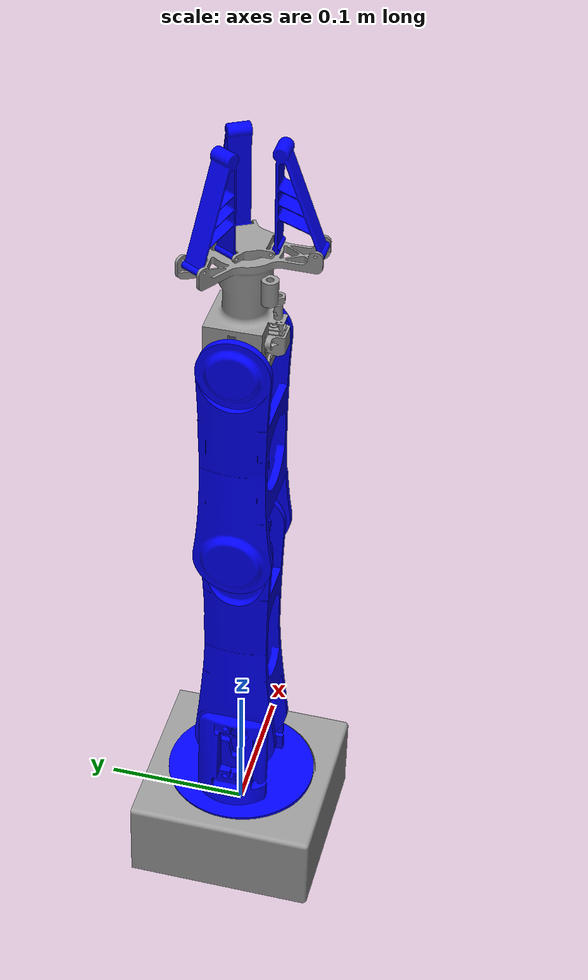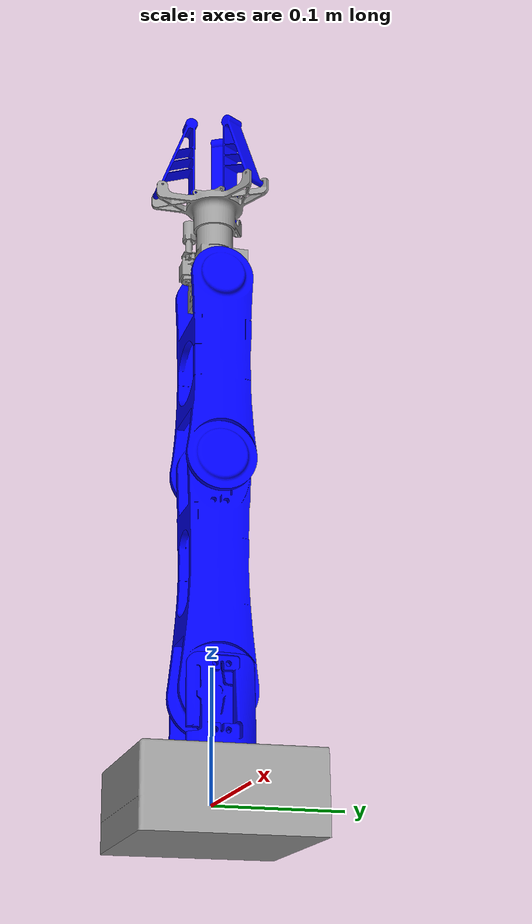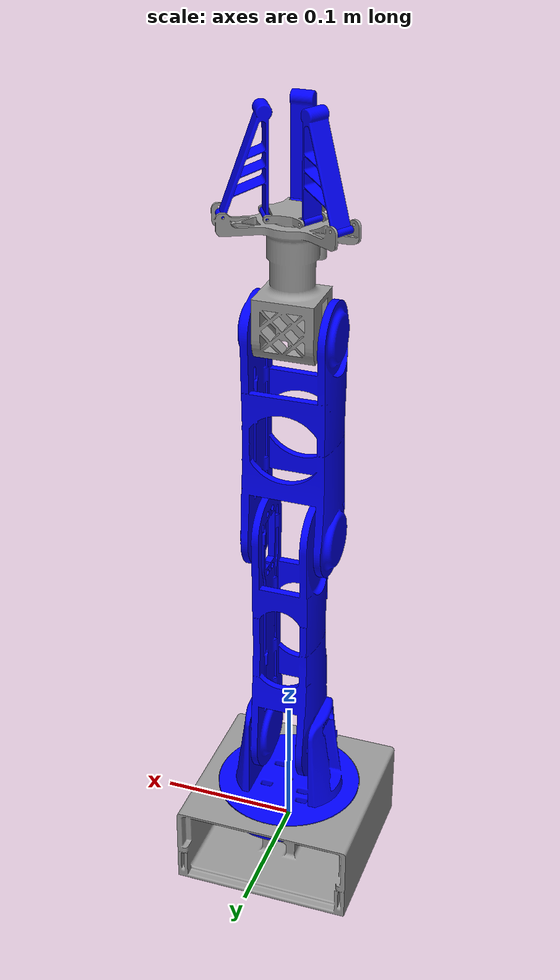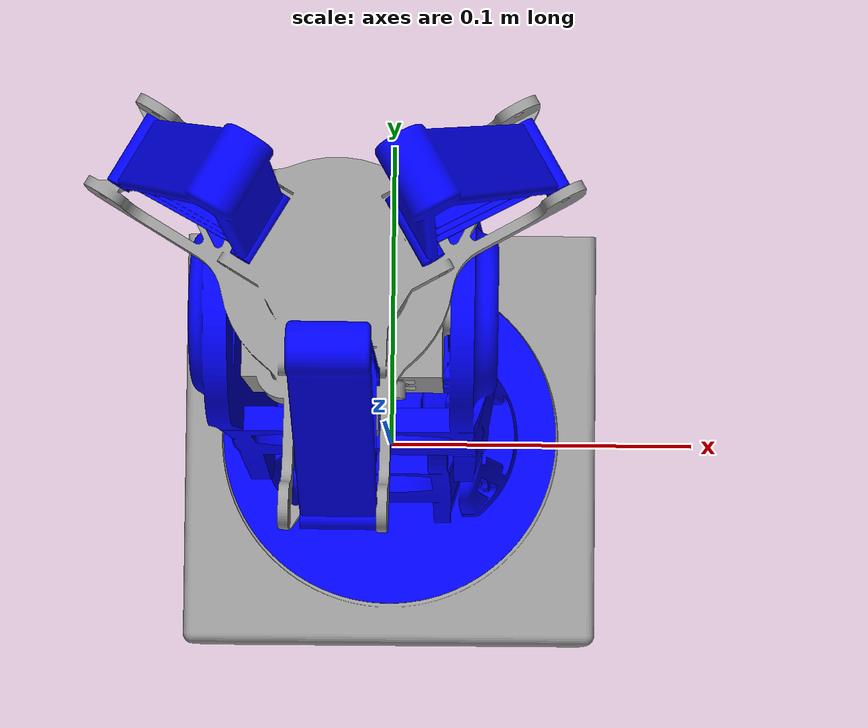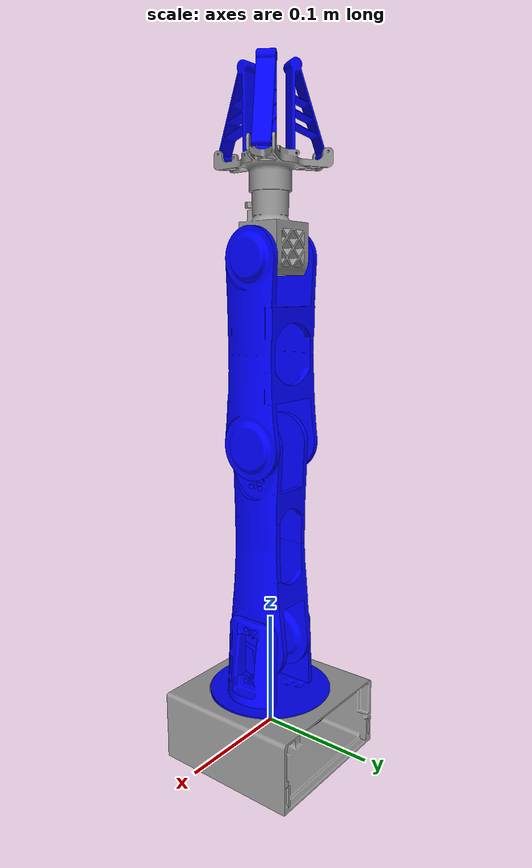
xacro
<?xml version="1.0"?>
<robot xmlns:xacro="http://www.ros.org/wiki/xacro" name="arm">

<!-- Base Link -->
  <link name="base_link">
    <inertial>
      <mass value="5.0"/>
      <origin xyz="0 0 0" rpy="0 0 0"/>
      <inertia ixx="0.1" ixy="0.0" ixz="0.0" iyy="0.1" iyz="0.0" izz="0.1"/>
    </inertial>
    <visual>
      <geometry>
        <mesh filename="$(find agrirover_description)/meshes/Base.stl" scale="0.001 0.001 0.001"/>
      </geometry>
      <material name="gray">
        <color rgba="0.6 0.6 0.6 1"/>
      </material>
    </visual>
    <collision>
      <geometry>
        <mesh filename="$(find agrirover_description)/meshes/Base_simplified.stl" scale="0.001 0.001 0.001"/>
      </geometry>
      <origin xyz="0 0 0" rpy="0 0 0"/>
    </collision>
  </link>

<!-- Arm Link 0 -->
  <link name="arm_link_0">
    <inertial>
      <mass value="3.0"/>
      <origin xyz="0 0 0" rpy="0 0 0"/>
      <inertia ixx="0.05" ixy="0.0" ixz="0.0" iyy="0.05" iyz="0.0" izz="0.05"/>
    </inertial>
    <visual>
      <geometry>
        <mesh filename="$(find agrirover_description)/meshes/Link_0.stl" scale="0.001 0.001 0.001"/>
      </geometry>
      <material name="blue">
        <color rgba="0 0 1 1"/>
      </material>
    </visual>
    <collision>
      <geometry>
        <mesh filename="$(find agrirover_description)/meshes/Link_0_simplified.stl" scale="0.001 0.001 0.001"/>
      </geometry>
      <origin xyz="0 0 0" rpy="0 0 0"/>
    </collision>
  </link>

<!-- Arm Link 1 -->
  <link name="arm_link_1">
    <inertial>
      <mass value="2.0"/>
      <origin xyz="0 0 0" rpy="0 0 0"/>
      <inertia ixx="0.03" ixy="0.0" ixz="0.0" iyy="0.03" iyz="0.0" izz="0.03"/>
    </inertial>
    <visual>
      <geometry>
        <mesh filename="$(find agrirover_description)/meshes/Link_1.stl" scale="0.001 0.001 0.001"/>
      </geometry>
      <material name="blue">
        <color rgba="0 0 1 1"/>
      </material>
    </visual>
    <collision>
      <geometry>
        <mesh filename="$(find agrirover_description)/meshes/Link_1.stl" scale="0.001 0.001 0.001"/>
      </geometry>
      <origin xyz="0 0 0" rpy="0 0 0"/>
    </collision>
  </link>

<!-- Arm Link 2 -->
  <link name="arm_link_2">
    <inertial>
      <mass value="1.5"/>
      <origin xyz="0 0 0" rpy="0 0 0"/>
      <inertia ixx="0.02" ixy="0.0" ixz="0.0" iyy="0.02" iyz="0.0" izz="0.02"/>
    </inertial>
    <visual>
      <geometry>
        <mesh filename="$(find agrirover_description)/meshes/Link_2.stl" scale="0.001 0.001 0.001"/>
      </geometry>
      <material name="blue">
        <color rgba="0 0 1 1"/>
      </material>
    </visual>
    <collision>
      <geometry>
        <mesh filename="$(find agrirover_description)/meshes/Link_2_simplified.stl" scale="0.001 0.001 0.001"/>
      </geometry>
      <origin xyz="0 0 0" rpy="0 0 0"/>
    </collision>
  </link>

<!-- World Link -->
  <link name="world"/>
  <!-- World to Base Joint -->
  <joint name="world_to_base" type="fixed">
    <parent link="world"/>
    <child link="base_link"/>
    <origin xyz="0 0 0" rpy="0 0 0"/>
  </joint>

<!-- Gripper Base -->
  <link name="gripper">
    <inertial>
      <mass value="0.5"/>
      <origin xyz="0 0 0" rpy="0 0 0"/>
      <inertia ixx="0.005" ixy="0.0" ixz="0.0" iyy="0.005" iyz="0.0" izz="0.005"/>
    </inertial>
    <visual>
      <geometry>
        <mesh filename="$(find agrirover_description)/meshes/gripper.stl" scale="0.001 0.001 0.001"/>
      </geometry>
      <material name="gray">
        <color rgba="0.6 0.6 0.6 1"/>
      </material>
    </visual>
    <collision>
      <geometry>
        <mesh filename="$(find agrirover_description)/meshes/gripper_simplified.stl" scale="0.001 0.001 0.001"/>
      </geometry>
    </collision>
  </link>

<!-- Finger 1 -->
  <link name="finger_1">
    <inertial>
      <mass value="0.1"/>
      <origin xyz="0 0 0" rpy="0 0 0"/>
      <inertia ixx="0.001" ixy="0.0" ixz="0.0" iyy="0.001" iyz="0.0" izz="0.001"/>
    </inertial>
    <visual>
      <geometry>
        <mesh filename="$(find agrirover_description)/meshes/finger.stl" scale="0.001 0.001 0.001"/>
      </geometry>
      <material name="blue">
        <color rgba="0 0 1 1"/>
      </material>
    </visual>
    <collision>
      <geometry>
        <mesh filename="$(find agrirover_description)/meshes/finger.stl" scale="0.001 0.001 0.001"/>
      </geometry>
    </collision>
  </link>

<!-- Finger 2 -->
  <link name="finger_2">
    <inertial>
      <mass value="0.1"/>
      <origin xyz="0 0 0" rpy="0 0 0"/>
      <inertia ixx="0.001" ixy="0.0" ixz="0.0" iyy="0.001" iyz="0.0" izz="0.001"/>
    </inertial>
    <visual>
      <geometry>
        <mesh filename="$(find agrirover_description)/meshes/finger.stl" scale="0.001 0.001 0.001"/>
      </geometry>
      <material name="blue">
        <color rgba="0 0 1 1"/>
      </material>
    </visual>
    <collision>
      <geometry>
        <mesh filename="$(find agrirover_description)/meshes/finger.stl" scale="0.001 0.001 0.001"/>
      </geometry>
    </collision>
  </link>

<!-- Finger 3 -->
  <link name="finger_3">
    <inertial>
      <mass value="0.1"/>
      <origin xyz="0 0 0" rpy="0 0 0"/>
      <inertia ixx="0.001" ixy="0.0" ixz="0.0" iyy="0.001" iyz="0.0" izz="0.001"/>
    </inertial>
    <visual>
      <geometry>
        <mesh filename="$(find agrirover_description)/meshes/finger.stl" scale="0.001 0.001 0.001"/>
      </geometry>
      <material name="blue">
        <color rgba="0 0 1 1"/>
      </material>
    </visual>
    <collision>
      <geometry>
        <mesh filename="$(find agrirover_description)/meshes/finger.stl" scale="0.001 0.001 0.001"/>
      </geometry>
    </collision>
  </link>

<!-- Mimic Finger 2 Joint -->
  <joint name="finger_2_joint" type="revolute">
    <parent link="gripper"/>
    <child link="finger_2"/>
    <origin xyz="-0.0085 0.08 0.015" rpy="3.14 -2.0944 0"/>
    <axis xyz="0 0 1"/>
    <limit effort="10.0" velocity="1.0" lower="-0.5" upper="0.5"/>
    <mimic joint="finger_1_joint" multiplier="1" offset="0"/>
  </joint>

<!-- Mimic Finger 3 Joint -->
  <joint name="finger_3_joint" type="revolute">
    <parent link="gripper"/>
    <child link="finger_3"/>
    <origin xyz="-0.0085 0.08 -0.015" rpy="3.14 2.0944 0"/>
    <axis xyz="0 0 1"/>
    <limit effort="10.0" velocity="1.0" lower="-0.5" upper="0.5"/>
    <mimic joint="finger_1_joint" multiplier="1" offset="0"/>
  </joint>

<!-- Base to arm_link_0 Joint -->
  <joint name="base_to_link_0" type="revolute">
    <parent link="base_link"/>
    <child link="arm_link_0"/>
    <origin xyz="0 0 0.03" rpy="0 0 1.57"/>
    <axis xyz="0 0 1"/>
    <limit effort="10.0" velocity="1.0" lower="-1.57" upper="1.57"/>
  </joint>

<!-- arm_link_0 to arm_link_1 Joint -->
  <joint name="link_0_to_link_1" type="revolute">
    <parent link="arm_link_0"/>
    <child link="arm_link_1"/>
    <origin xyz="0 0 0.05" rpy="1.57 0 3.14"/>
    <axis xyz="0 0 1"/>
    <limit effort="10.0" velocity="1.0" lower="-1.57" upper="1.57"/>
  </joint>

<!-- arm_link_1 to arm_link_2 Joint -->
  <joint name="link_1_to_link_2" type="revolute">
    <parent link="arm_link_1"/>
    <child link="arm_link_2"/>
    <origin xyz="0 0.176 0" rpy="0 0 0"/>
    <axis xyz="0 0 1"/>
    <limit effort="10.0" velocity="1.0" lower="-2.0944" upper="2.0944"/>
  </joint>

<!-- arm_link_2 to gripper Joint -->
  <joint name="link_2_to_gripper" type="revolute">
    <parent link="arm_link_2"/>
    <child link="gripper"/>
    <origin xyz="0 0.155 0" rpy="0 0 0"/>
    <axis xyz="0 0 1"/>
    <limit effort="10.0" velocity="1.0" lower="-1.57" upper="1.57"/>
  </joint>

<!-- finger_1 Joint -->
  <joint name="finger_1_joint" type="revolute">
    <parent link="gripper"/>
    <child link="finger_1"/>
    <origin xyz="0.02 0.08 -0.001" rpy="3.14 0 0"/>
    <axis xyz="0 0 1"/>
    <limit effort="10.0" velocity="1.0" lower="-0.15" upper="0.8"/>
  </joint>

  <ros2_control name="arm_dof" type="system">

    <joint name="base_to_link_0">
      <command_interface name="position">
        <param name="min">0</param>
        <param name="max">2*pi</param>
      </command_interface>
      <!-- additional command interfaces ... -->
    </joint>
    <!-- additional joints ...-->
    <!-- additional hardware/sensors ...-->

    <joint name="link_0_to_link_1">
      <command_interface name="position">
        <param name="min">0</param>
        <param name="max">2*pi</param>
      </command_interface>
      <!-- additional command interfaces ... -->
    </joint>

    <joint name="link_1_to_link_2">
      <command_interface name="position">
        <param name="min">0</param>
        <param name="max">2*pi</param>
      </command_interface>
      <!-- additional command interfaces ... -->
    </joint>

    <joint name="link_2_to_gripper">
      <command_interface name="position">
        <param name="min">0</param>
        <param name="max">2*pi</param>
      </command_interface>
      <!-- additional command interfaces ... -->
    </joint>

  </ros2_control>

</robot>
